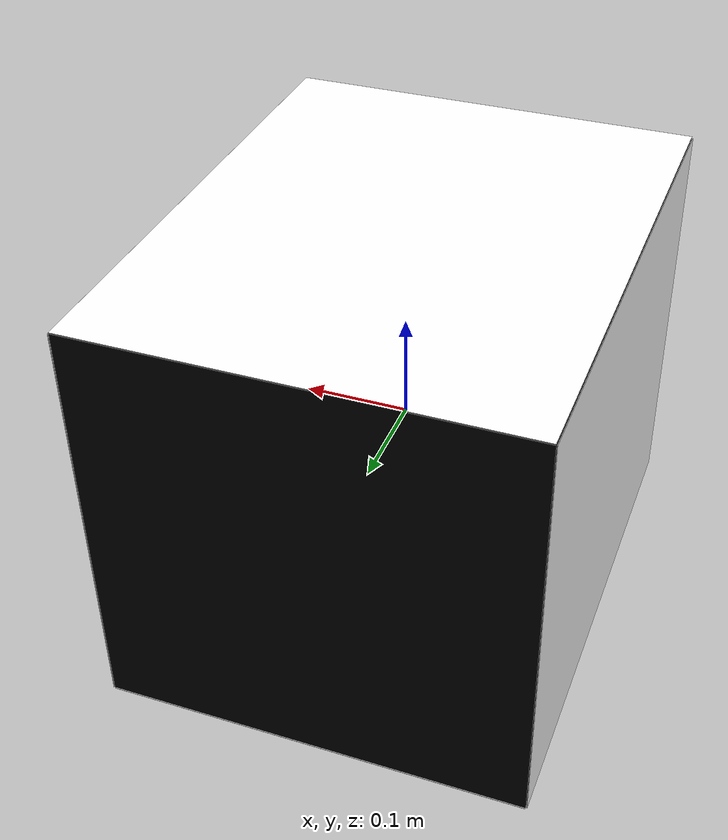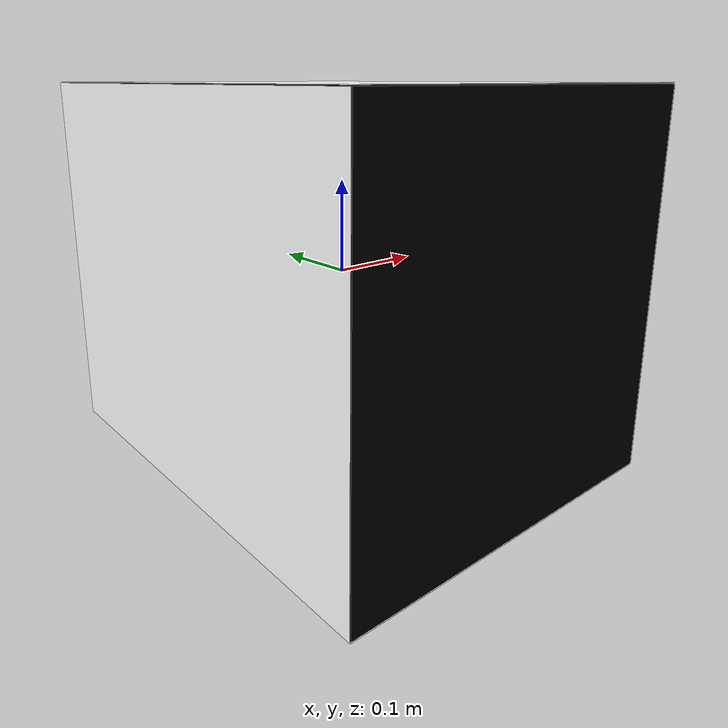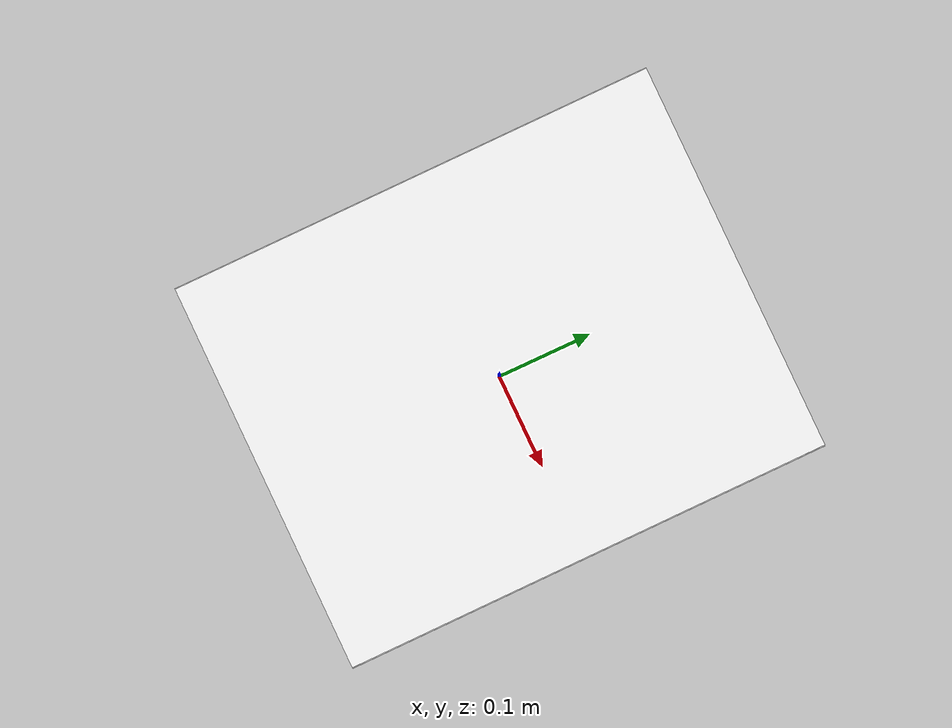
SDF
<?xml version="1.0" encoding="UTF-8"?>
<sdf version='1.9'>
  <model name='plant_pot'>
    <static>true</static>
    <pose>0 0 0.0 0 0 0</pose>
    <link name='base'>
      <!-- Box nero come base -->
      <visual name='box_visual'>
        <geometry>
          <box>
            <size>0.4 0.5 0.4</size>
          </box>
        </geometry>
        <material>
          <ambient>0 0 0 1</ambient>
          <diffuse>0 0 0 1</diffuse>
          <specular>0.1 0.1 0.1 1</specular>
        </material>
      </visual>

      <!-- Piano con texture ArUco sulla faccia superiore -->
      <visual name='texture_neg_y'>
        <pose>0 0 0.201 0 0 0</pose>
        <geometry>
          <plane>
            <normal>0 0 1</normal>
            <size>0.4 0.5</size>
          </plane>
        </geometry>
        <material>
          <diffuse>1 1 1 1</diffuse>
          <specular>0.4 0.4 0.4 1</specular>
          <pbr>
            <metal>
              <albedo_map>model://leo_race_field/plant_pot/plant_pot.png</albedo_map>
            </metal>
          </pbr>
        </material>
      </visual>

      <visual name='texture_pos_y'>
        <pose>0 0 -0.201 3.14159 0 3.14159</pose>
        <geometry>
          <plane>
            <normal>0 0 1</normal>
            <size>0.4 0.5</size>
          </plane>
        </geometry>
        <material>
          <diffuse>1 1 1 1</diffuse>
          <specular>0.4 0.4 0.4 1</specular>
          <pbr>
            <metal>
              <albedo_map>model://leo_race_field/plant_pot/plant_pot.png</albedo_map>
            </metal>
          </pbr>
        </material>
      </visual>

      <visual name='texture_pos_x'>
        <pose>0.201 0 0 0 1.5708 0</pose>
        <geometry>
          <plane>
            <normal>0 0 1</normal>
            <size>0.4 0.5</size>
          </plane>
        </geometry>
        <material>
          <diffuse>1 1 1 1</diffuse>
          <specular>0.4 0.4 0.4 1</specular>
          <pbr>
            <metal>
              <albedo_map>model://leo_race_field/plant_pot/plant_pot.png</albedo_map>
            </metal>
          </pbr>
        </material>
      </visual>

      <visual name='texture_neg_x'>
        <pose>-0.201 0 0 0 -1.5708 0</pose>
        <geometry>
          <plane>
            <normal>0 0 1</normal>
            <size>0.4 0.5</size>
          </plane>
        </geometry>
        <material>
          <diffuse>1 1 1 1</diffuse>
          <specular>0.4 0.4 0.4 1</specular>
          <pbr>
            <metal>
              <albedo_map>model://leo_race_field/plant_pot/plant_pot.png</albedo_map>
            </metal>
          </pbr>
        </material>
      </visual>

      <!-- Collision geometry -->
      <collision name='box_collision'>
        <geometry>
          <box>
            <size>0.4 0.3 0.5</size>
          </box>
        </geometry>
      </collision>
    </link>
  </model>
</sdf>
